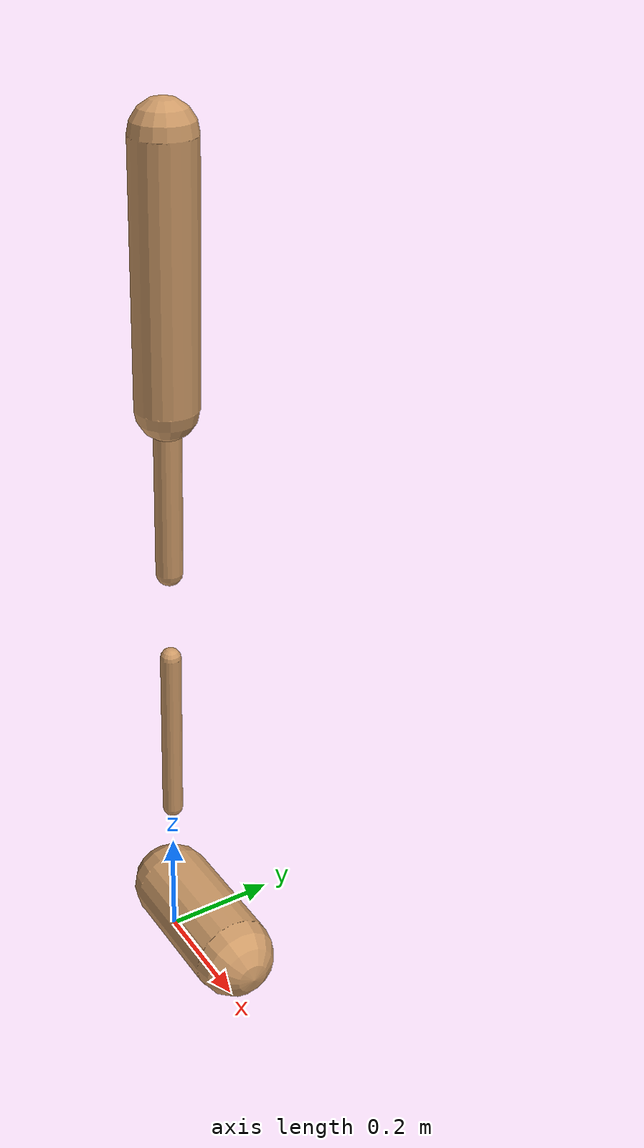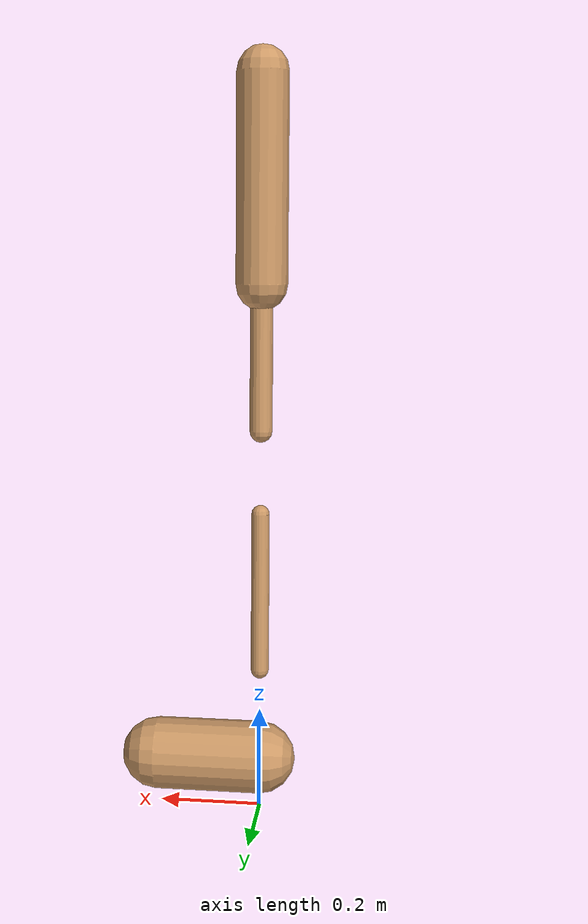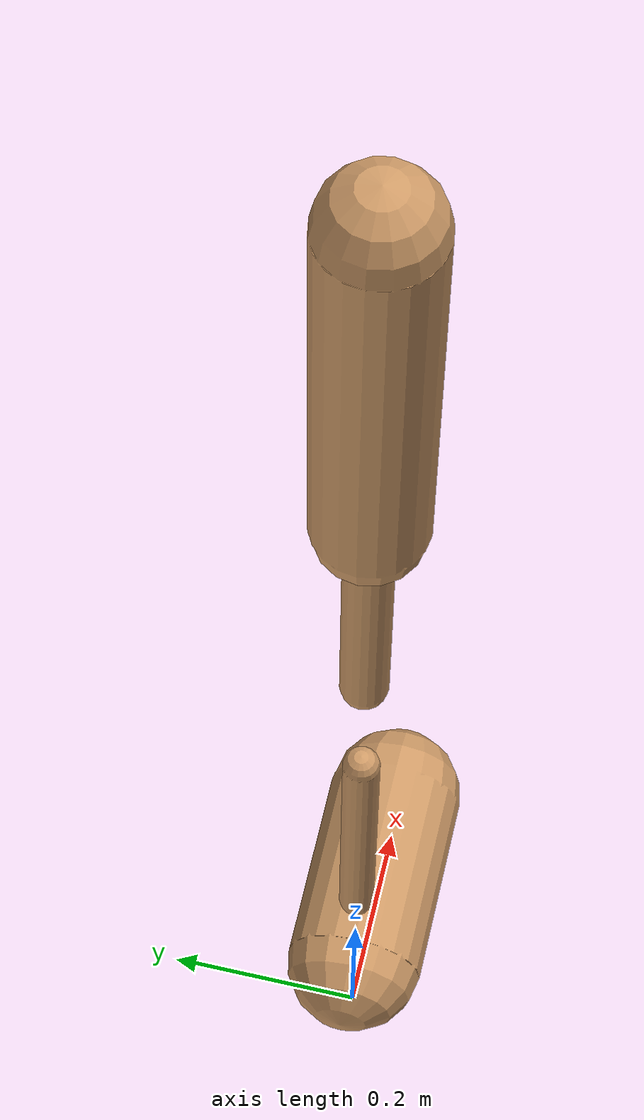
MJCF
<mujoco model="walker2d">
  <compiler angle="degree" coordinate="global" inertiafromgeom="true" />
  <default>
    <joint armature="0.01" damping=".1" limited="true" />
    <geom conaffinity="0" condim="3" contype="1" density="1000" friction="0.8 .1 .1" rgba="0.8 0.6 .4 1" />
  </default>
  <option integrator="RK4" timestep="0.002" />
  <worldbody>

    <body name="torso" pos="0 0 -0.34812286937362413">
      <joint armature="0" axis="1 0 0" damping="0" limited="false" name="ignorex" pos="0 0 0" stiffness="0" type="slide" />
      <joint armature="0" axis="0 0 1" damping="0" limited="false" name="ignorez" pos="0 0 0" ref="1.25" stiffness="0" type="slide" />
      <joint armature="0" axis="0 1 0" damping="0" limited="false" name="ignorey" pos="0 0 0" stiffness="0" type="hinge" />
      <geom fromto="0 0 1.45 0 0 1.05" name="torso_geom" size="0.05064479561992446" type="capsule" />
      <body name="thigh">
        <joint axis="0 -1 0" name="thigh_joint" pos="0 0 1.05" range="-150 0" type="hinge" />
        <geom fromto="0.0 0.0 1.05 0.0 0.0 0.7649003065454009" name="thigh_geom" size="0.02224940763137047" type="capsule" />
        <body name="leg" pos="0.0 0.0 0.1649003065454009">
          <joint axis="0 -1 0" name="leg_joint" pos="0 0 0.6" range="-150 0" type="hinge" />
          <geom fromto="0.0 0.0 0.6 0.0 0.0 0.2832225628282232" name="leg_geom" size="0.017799526105096372" type="capsule" />
          <body name="foot" pos="0.0 0.0 0.18322256282822322">
            <joint axis="0 -1 0" name="foot_joint" pos="0 0 0.1" range="-45 45" type="hinge" />
            <geom fromto="-0.0 0.0 0.10000000000000002 0.20753083378972248 0.0 0.10000000000000002" name="foot_geom" size="0.07172518536689328" type="capsule" />
          </body>
        </body>
      </body>

      <body name="thigh_left">
        <joint axis="0 -1 0" name="thigh_left_joint" pos="0 0 1.05" range="-150 0" type="hinge" />
        <geom fromto="0.0 0.0 1.05 0.0 0.0 0.7649003065454009" name="thigh_left_geom" rgba=".7 .3 .6 1" size="0.02224940763137047" type="capsule" />
        <body name="leg_left" pos="0.0 0.0 0.1649003065454009">
          <joint axis="0 -1 0" name="leg_left_joint" pos="0 0 0.6" range="-150 0" type="hinge" />
          <geom fromto="0.0 0.0 0.6 0.0 0.0 0.2832225628282232" name="leg_left_geom" rgba=".7 .3 .6 1" size="0.017799526105096372" type="capsule" />
          <body name="foot_left" pos="0.0 0.0 0.18322256282822322">
            <joint axis="0 -1 0" name="foot_left_joint" pos="0 0 0.1" range="-45 45" type="hinge" />
            <geom fromto="-0.0 0.0 0.10000000000000002 0.20753083378972248 0.0 0.10000000000000002" name="foot_left_geom" rgba=".7 .3 .6 1" size="0.07172518536689328" type="capsule" />
          </body>
        </body>
      </body>
    </body>
  </worldbody>
  <actuator>

    <motor ctrllimited="true" ctrlrange="-1.0 1.0" gear="100" joint="thigh_joint" />
    <motor ctrllimited="true" ctrlrange="-1.0 1.0" gear="100" joint="leg_joint" />
    <motor ctrllimited="true" ctrlrange="-1.0 1.0" gear="100" joint="foot_joint" />
    <motor ctrllimited="true" ctrlrange="-1.0 1.0" gear="100" joint="thigh_left_joint" />
    <motor ctrllimited="true" ctrlrange="-1.0 1.0" gear="100" joint="leg_left_joint" />
    <motor ctrllimited="true" ctrlrange="-1.0 1.0" gear="100" joint="foot_left_joint" />

  </actuator>
</mujoco>
